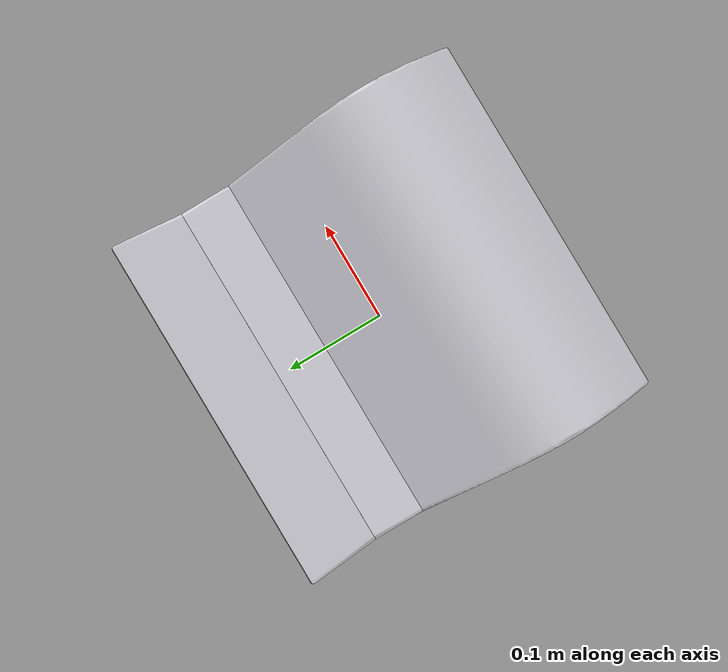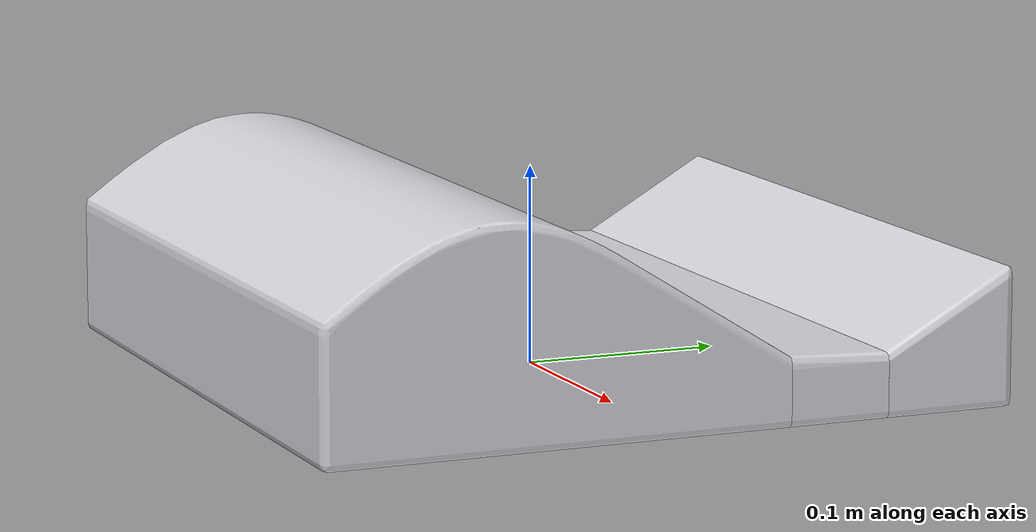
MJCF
<mujoco model="plane_curved_wave">
  <asset>
    <mesh file="meshes/plane_surfaces/curved_wave_surface.obj" name="plane_curved_wave_visual_mesh"/>
    <mesh file="meshes/plane_surfaces/curved_wave_decomp/curved_wave_part_00.obj" name="plane_curved_wave_col_00"/>
    <mesh file="meshes/plane_surfaces/curved_wave_decomp/curved_wave_part_01.obj" name="plane_curved_wave_col_01"/>
    <mesh file="meshes/plane_surfaces/curved_wave_decomp/curved_wave_part_02.obj" name="plane_curved_wave_col_02"/>
  </asset>
  <worldbody>
    <body>
      <body name="object">
        <geom mesh="plane_curved_wave_visual_mesh" type="mesh"
              solimp="0.998 0.998 0.001" solref="0.001 1"
              density="1e-8" rgba="0.85 0.85 0.88 1"
              contype="0" conaffinity="0" group="1"/>
        <geom mesh="plane_curved_wave_col_00" type="mesh"
              solimp="0.998 0.998 0.001" solref="0.001 1"
              density="3.125" friction="0.95 0.3 0.1" rgba="0.85 0.85 0.88 1"
              contype="1" conaffinity="1" group="0"/>
        <geom mesh="plane_curved_wave_col_01" type="mesh"
              solimp="0.998 0.998 0.001" solref="0.001 1"
              density="3.125" friction="0.95 0.3 0.1" rgba="0.85 0.85 0.88 1"
              contype="1" conaffinity="1" group="0"/>
        <geom mesh="plane_curved_wave_col_02" type="mesh"
              solimp="0.998 0.998 0.001" solref="0.001 1"
              density="3.125" friction="0.95 0.3 0.1" rgba="0.85 0.85 0.88 1"
              contype="1" conaffinity="1" group="0"/>
      </body>
      <site rgba="0 0 0 0" size="0.005" pos="0 0 0" name="bottom_site"/>
      <site rgba="0 0 0 0" size="0.005" pos="0 0 0.105" name="top_site"/>
      <site rgba="0 0 0 0" size="0.005" pos="0.175 0.175 0" name="horizontal_radius_site"/>
    </body>
  </worldbody>
</mujoco>
